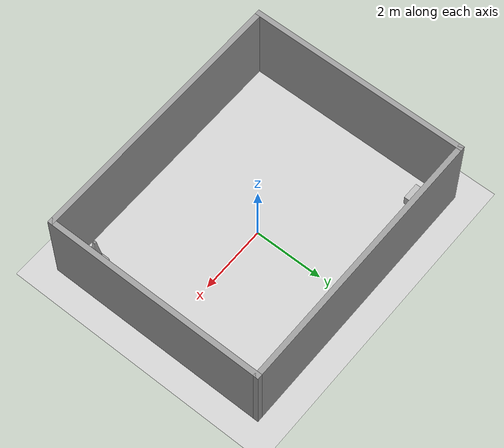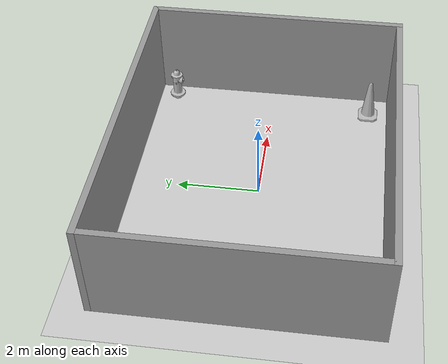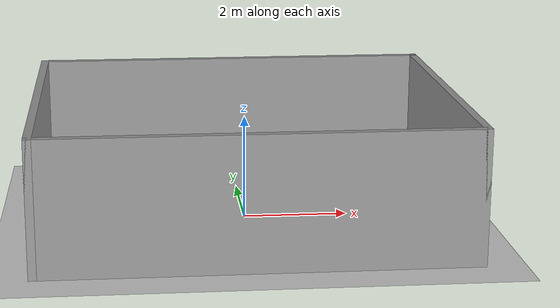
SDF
<sdf version="1.7">
 <world name="default">
  <light name="sun" type="directional">
   <pose>0 0 10 0 -0 0</pose>
   <diffuse>0.8 0.8 0.8 1</diffuse>
   <specular>0.2 0.2 0.2 1</specular>
   <attenuation>
    <range>1000</range>
    <constant>0.9</constant>
    <linear>0.01</linear>
    <quadratic>0.001</quadratic>
   </attenuation>
   <direction>-0.5 0.1 -0.9</direction>
   <spot><inner_angle>0</inner_angle><outer_angle>0</outer_angle><falloff>0</falloff></spot>
  </light>
  <model name="ground_plane">
   <static>1</static>
   <link name="link">
    <collision name="collision">
     <geometry><plane><normal>0 0 1</normal><size>100 100</size></plane></geometry>
     <surface>
      <contact><collide_bitmask>65535</collide_bitmask></contact>
      <friction><ode><mu>100</mu><mu2>50</mu2></ode></friction>
     </surface>
    </collision>
    <visual name="visual">
     <cast_shadows>0</cast_shadows>
     <geometry><plane><normal>0 0 1</normal><size>100 100</size></plane></geometry>
     <material>
      <script><uri>file://media/materials/scripts/gazebo.material</uri><name>Gazebo/Grey</name></script>
     </material>
    </visual>
   </link>
  </model>
  <gravity>0 0 -9.8</gravity>
  <magnetic_field>6e-06 2.3e-05 -4.2e-05</magnetic_field>
  <atmosphere type="adiabatic"/>
  <physics type="ode">
   <max_step_size>0.001</max_step_size>
   <real_time_factor>1</real_time_factor>
   <real_time_update_rate>1000</real_time_update_rate>
  </physics>
  <scene><ambient>0.4 0.4 0.4 1</ambient><background>0.7 0.7 0.7 1</background><shadows>1</shadows></scene>
  <spherical_coordinates>
   <surface_model>EARTH_WGS84</surface_model>
   <latitude_deg>0</latitude_deg>
   <longitude_deg>0</longitude_deg>
   <elevation>0</elevation>
   <heading_deg>0</heading_deg>
  </spherical_coordinates>
  <model name="test_world2">
   <pose>-0.001948 0.019513 0 0 -0 0</pose>
   <link name="Wall_2">
    <collision name="Wall_2_Collision">
     <geometry><box><size>6.5 0.15 2.5</size></box></geometry>
     <pose>0 0 1.25 0 -0 0</pose>
    </collision>
    <visual name="Wall_2_Visual">
     <pose>0 0 1.25 0 -0 0</pose>
     <geometry><box><size>6.5 0.15 2.5</size></box></geometry>
     <material>
      <script><uri>file://media/materials/scripts/gazebo.material</uri><name>Gazebo/Grey</name></script>
      <ambient>1 1 1 1</ambient>
     </material>
     <meta><layer>0</layer></meta>
    </visual>
    <pose>3.925 0 0 0 -0 1.5708</pose>
   </link>
   <link name="Wall_3">
    <collision name="Wall_3_Collision">
     <geometry><box><size>8 0.15 2.5</size></box></geometry>
     <pose>0 0 1.25 0 -0 0</pose>
    </collision>
    <visual name="Wall_3_Visual">
     <pose>0 0 1.25 0 -0 0</pose>
     <geometry><box><size>8 0.15 2.5</size></box></geometry>
     <material>
      <script><uri>file://media/materials/scripts/gazebo.material</uri><name>Gazebo/Grey</name></script>
      <ambient>1 1 1 1</ambient>
     </material>
     <meta><layer>0</layer></meta>
    </visual>
    <pose>-0 3.175 0 0 -0 3.14159</pose>
   </link>
   <link name="Wall_4">
    <collision name="Wall_4_Collision">
     <geometry><box><size>6.5 0.15 2.5</size></box></geometry>
     <pose>0 0 1.25 0 -0 0</pose>
    </collision>
    <visual name="Wall_4_Visual">
     <pose>0 0 1.25 0 -0 0</pose>
     <geometry><box><size>6.5 0.15 2.5</size></box></geometry>
     <material>
      <script><uri>file://media/materials/scripts/gazebo.material</uri><name>Gazebo/Grey</name></script>
      <ambient>1 1 1 1</ambient>
     </material>
     <meta><layer>0</layer></meta>
    </visual>
    <pose>-3.925 0 0 0 -0 -1.5708</pose>
   </link>
   <link name="Wall_5">
    <collision name="Wall_5_Collision">
     <geometry><box><size>8 0.15 2.5</size></box></geometry>
     <pose>0 0 1.25 0 -0 0</pose>
    </collision>
    <visual name="Wall_5_Visual">
     <pose>0 0 1.25 0 -0 0</pose>
     <geometry><box><size>8 0.15 2.5</size></box></geometry>
     <material>
      <script><uri>file://media/materials/scripts/gazebo.material</uri><name>Gazebo/Grey</name></script>
      <ambient>1 1 1 1</ambient>
     </material>
     <meta><layer>0</layer></meta>
    </visual>
    <pose>-0 -3.175 0 0 -0 0</pose>
   </link>
   <static>1</static>
  </model>
  <model name="cardboard_box">
   <pose>-3.29183 2.53905 0.149 0 -0 0</pose>
   <link name="link">
    <inertial>
     <mass>2</mass>
     <inertia>
      <ixx>0.0416667</ixx>
      <ixy>0</ixy>
      <ixz>0</ixz>
      <iyy>0.0566667</iyy>
      <iyz>0</iyz>
      <izz>0.0683333</izz>
     </inertia>
    </inertial>
    <collision name="collision">
     <geometry><box><size>0.5 0.4 0.3</size></box></geometry>
     <surface>
      <friction><ode><mu>1</mu><mu2>1</mu2></ode></friction>
      <contact><ode><kp>1e+07</kp><kd>1</kd><min_depth>0.001</min_depth><max_vel>0.1</max_vel></ode></contact>
     </surface>
    </collision>
    <visual name="visual">
     <pose>0 0 -0.15 0 -0 0</pose>
     <geometry>
      <mesh><uri>model://cardboard_box/meshes/cardboard_box.dae</uri><scale>1.25932 1.00745 0.755591</scale></mesh>
     </geometry>
    </visual>
   </link>
  </model>
  <model name="Construction Cone">
   <link name="link">
    <collision name="collision">
     <geometry>
      <mesh><scale>10 10 10</scale><uri>model://construction_cone/meshes/construction_cone.dae</uri></mesh>
     </geometry>
    </collision>
    <visual name="visual">
     <geometry>
      <mesh><scale>10 10 10</scale><uri>model://construction_cone/meshes/construction_cone.dae</uri></mesh>
     </geometry>
    </visual>
    <inertial>
     <inertia><ixx>1</ixx><ixy>0</ixy><ixz>0</ixz><iyy>1</iyy><iyz>0</iyz><izz>1</izz></inertia>
     <mass>1</mass>
    </inertial>
   </link>
   <pose>3.21528 -2.57733 0 -0 -0 -0</pose>
  </model>
  <model name="fire_hydrant">
   <static>1</static>
   <link name="link">
    <collision name="collision">
     <geometry><mesh><uri>model://fire_hydrant/meshes/fire_hydrant.dae</uri></mesh></geometry>
    </collision>
    <visual name="visual">
     <geometry><mesh><uri>model://fire_hydrant/meshes/fire_hydrant.dae</uri></mesh></geometry>
    </visual>
   </link>
   <pose>3.39391 2.65388 0 0 -0 0</pose>
  </model>
 </world>
</sdf>
